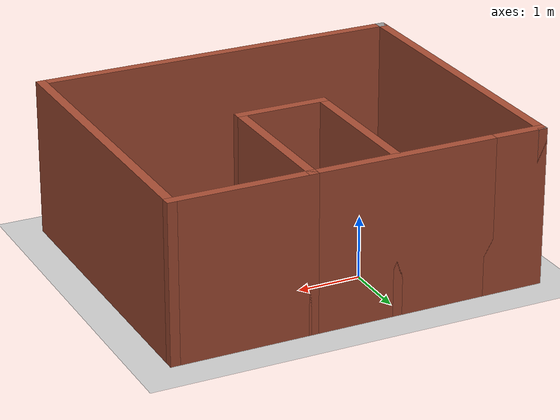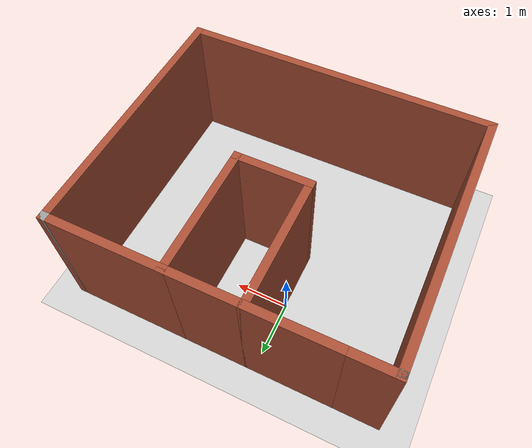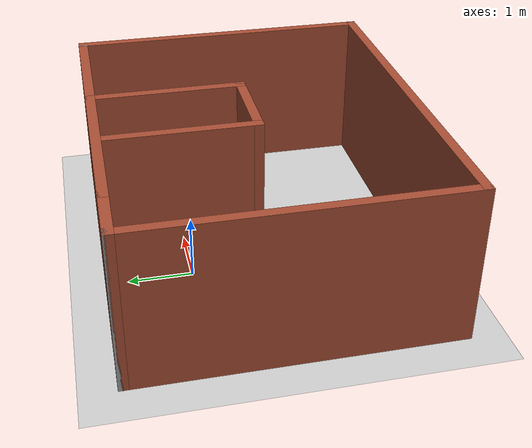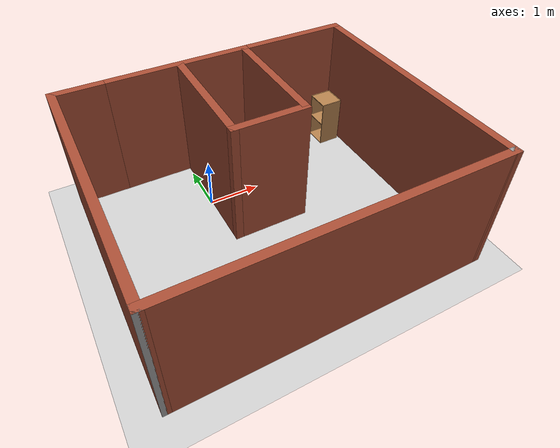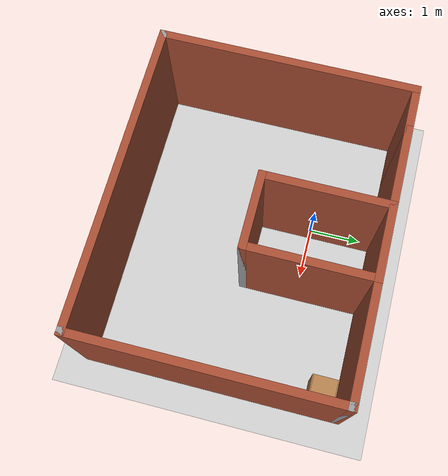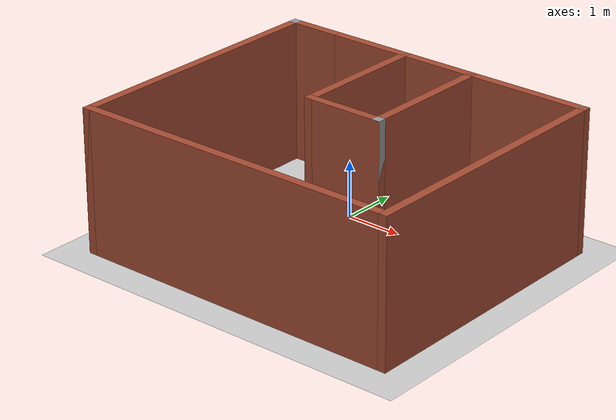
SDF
<sdf version="1.6">
 <world name="default">
  <light name="sun" type="directional">
   <pose>0 0 15 0 -0 0</pose>
   <diffuse>1 1 1 1</diffuse>
   <specular>0.1 0.1 0.1 1</specular>
   <attenuation>
    <range>1000</range>
    <constant>0.9</constant>
    <linear>0.01</linear>
    <quadratic>0.001</quadratic>
   </attenuation>
   <direction>-0.5 0.5 -1</direction>
  </light>
  <model name="ground_plane">
   <static>1</static>
   <link name="link">
    <collision name="collision">
     <geometry><plane><normal>0 0 1</normal><size>100 100</size></plane></geometry>
     <surface><friction><ode><mu>100</mu><mu2>50</mu2></ode></friction></surface>
    </collision>
    <visual name="visual">
     <transparency>1</transparency>
     <cast_shadows>0</cast_shadows>
     <geometry><plane><normal>0 0 1</normal><size>100 100</size></plane></geometry>
     <material>
      <script><uri>file://media/materials/scripts/gazebo.material</uri><name>Gazebo/Grey</name></script>
     </material>
    </visual>
   </link>
  </model>
  <gravity>0 0 -9.8</gravity>
  <magnetic_field>6e-06 2.3e-05 -4.2e-05</magnetic_field>
  <atmosphere type="adiabatic"/>
  <physics name="default_physics" default="0" type="ode">
   <max_step_size>0.001</max_step_size>
   <real_time_factor>1</real_time_factor>
   <real_time_update_rate>1000</real_time_update_rate>
  </physics>
  <scene><ambient>0.4 0.4 0.4 1</ambient><background>0.7 0.7 0.7 1</background><shadows>1</shadows></scene>
  <spherical_coordinates>
   <surface_model>EARTH_WGS84</surface_model>
   <latitude_deg>0</latitude_deg>
   <longitude_deg>0</longitude_deg>
   <elevation>0</elevation>
   <heading_deg>0</heading_deg>
  </spherical_coordinates>
  <model name="model">
   <pose>0.661983 -1.1407 0 0 -0 0</pose>
   <link name="Wall_0">
    <collision name="Wall_0_Collision">
     <geometry><box><size>3 0.15 2.5</size></box></geometry>
     <pose>0 0 1.25 0 -0 0</pose>
    </collision>
    <visual name="Wall_0_Visual">
     <pose>0 0 1.25 0 -0 0</pose>
     <geometry><box><size>3 0.15 2.5</size></box></geometry>
     <material>
      <script><uri>file://media/materials/scripts/gazebo.material</uri><name>Gazebo/Bricks</name></script>
      <ambient>1 1 1 1</ambient>
     </material>
    </visual>
    <pose>-0.65 2.425 0 0 -0 0</pose>
   </link>
   <link name="Wall_10">
    <collision name="Wall_10_Collision">
     <geometry><box><size>2.3 0.15 2.5</size></box></geometry>
     <pose>0 0 1.25 0 -0 0</pose>
    </collision>
    <visual name="Wall_10_Visual">
     <pose>0 0 1.25 0 -0 0</pose>
     <geometry><box><size>2.3 0.15 2.5</size></box></geometry>
     <material>
      <script><uri>file://media/materials/scripts/gazebo.material</uri><name>Gazebo/Bricks</name></script>
      <ambient>1 1 1 1</ambient>
     </material>
    </visual>
    <pose>1.85 2.425 0 0 -0 3.14159</pose>
   </link>
   <link name="Wall_11">
    <collision name="Wall_11_Collision">
     <geometry><box><size>2.5 0.15 2.5</size></box></geometry>
     <pose>0 0 1.25 0 -0 0</pose>
    </collision>
    <visual name="Wall_11_Visual">
     <pose>0 0 1.25 0 -0 0</pose>
     <geometry><box><size>2.5 0.15 2.5</size></box></geometry>
     <material>
      <script><uri>file://media/materials/scripts/gazebo.material</uri><name>Gazebo/Bricks</name></script>
      <ambient>1 1 1 1</ambient>
     </material>
    </visual>
    <pose>0.775 1.25 0 0 0 -1.5708</pose>
   </link>
   <link name="Wall_12">
    <collision name="Wall_12_Collision">
     <geometry><box><size>0.15 0.15 2.5</size></box></geometry>
     <pose>0 0 1.25 0 -0 0</pose>
    </collision>
    <visual name="Wall_12_Visual">
     <pose>0 0 1.25 0 -0 0</pose>
     <geometry><box><size>0.15 0.15 2.5</size></box></geometry>
     <material>
      <script><uri>file://media/materials/scripts/gazebo.material</uri><name>Gazebo/Grey</name></script>
      <ambient>1 1 1 1</ambient>
     </material>
    </visual>
    <pose>0.775 0.075 0 0 -0 0</pose>
   </link>
   <link name="Wall_13">
    <collision name="Wall_13_Collision">
     <geometry><box><size>1.5 0.15 2.5</size></box></geometry>
     <pose>0 0 1.25 0 -0 0</pose>
    </collision>
    <visual name="Wall_13_Visual">
     <pose>0 0 1.25 0 -0 0</pose>
     <geometry><box><size>1.5 0.15 2.5</size></box></geometry>
     <material>
      <script><uri>file://media/materials/scripts/gazebo.material</uri><name>Gazebo/Bricks</name></script>
      <ambient>1 1 1 1</ambient>
     </material>
    </visual>
    <pose>0.1 0.075 0 0 -0 3.14159</pose>
   </link>
   <link name="Wall_14">
    <collision name="Wall_14_Collision">
     <geometry><box><size>2.5 0.15 2.5</size></box></geometry>
     <pose>0 0 1.25 0 -0 0</pose>
    </collision>
    <visual name="Wall_14_Visual">
     <pose>0 0 1.25 0 -0 0</pose>
     <geometry><box><size>2.5 0.15 2.5</size></box></geometry>
     <material>
      <script><uri>file://media/materials/scripts/gazebo.material</uri><name>Gazebo/Bricks</name></script>
      <ambient>1 1 1 1</ambient>
     </material>
    </visual>
    <pose>-0.575 1.25 0 0 -0 1.5708</pose>
   </link>
   <link name="Wall_2">
    <collision name="Wall_2_Collision">
     <geometry><box><size>1 0.15 2.5</size></box></geometry>
     <pose>0 0 1.25 0 -0 0</pose>
    </collision>
    <visual name="Wall_2_Visual">
     <pose>0 0 1.25 0 -0 0</pose>
     <geometry><box><size>1 0.15 2.5</size></box></geometry>
     <material>
      <script><uri>file://media/materials/scripts/gazebo.material</uri><name>Gazebo/Bricks</name></script>
      <ambient>1 1 1 1</ambient>
     </material>
    </visual>
    <pose>-2.5 2.425 0 0 -0 3.14159</pose>
   </link>
   <link name="Wall_3">
    <collision name="Wall_3_Collision">
     <geometry><box><size>0.15 0.15 2.5</size></box></geometry>
     <pose>0 0 1.25 0 -0 0</pose>
    </collision>
    <visual name="Wall_3_Visual">
     <pose>0 0 1.25 0 -0 0</pose>
     <geometry><box><size>0.15 0.15 2.5</size></box></geometry>
     <material>
      <script><uri>file://media/materials/scripts/gazebo.material</uri><name>Gazebo/Grey</name></script>
      <ambient>1 1 1 1</ambient>
     </material>
    </visual>
    <pose>-2.925 2.425 0 0 -0 0</pose>
   </link>
   <link name="Wall_4">
    <collision name="Wall_4_Collision">
     <geometry><box><size>5 0.15 2.5</size></box></geometry>
     <pose>0 0 1.25 0 -0 0</pose>
    </collision>
    <visual name="Wall_4_Visual">
     <pose>0 0 1.25 0 -0 0</pose>
     <geometry><box><size>5 0.15 2.5</size></box></geometry>
     <material>
      <script><uri>file://media/materials/scripts/gazebo.material</uri><name>Gazebo/Bricks</name></script>
      <ambient>1 1 1 1</ambient>
     </material>
    </visual>
    <pose>-2.925 0 0 0 0 -1.5708</pose>
   </link>
   <link name="Wall_5">
    <collision name="Wall_5_Collision">
     <geometry><box><size>0.15 0.15 2.5</size></box></geometry>
     <pose>0 0 1.25 0 -0 0</pose>
    </collision>
    <visual name="Wall_5_Visual">
     <pose>0 0 1.25 0 -0 0</pose>
     <geometry><box><size>0.15 0.15 2.5</size></box></geometry>
     <material>
      <script><uri>file://media/materials/scripts/gazebo.material</uri><name>Gazebo/Grey</name></script>
      <ambient>1 1 1 1</ambient>
     </material>
    </visual>
    <pose>-2.925 -2.425 0 0 -0 0</pose>
   </link>
   <link name="Wall_6">
    <collision name="Wall_6_Collision">
     <geometry><box><size>6 0.15 2.5</size></box></geometry>
     <pose>0 0 1.25 0 -0 0</pose>
    </collision>
    <visual name="Wall_6_Visual">
     <pose>0 0 1.25 0 -0 0</pose>
     <geometry><box><size>6 0.15 2.5</size></box></geometry>
     <material>
      <script><uri>file://media/materials/scripts/gazebo.material</uri><name>Gazebo/Bricks</name></script>
      <ambient>1 1 1 1</ambient>
     </material>
    </visual>
    <pose>0 -2.425 0 0 -0 0</pose>
   </link>
   <link name="Wall_7">
    <collision name="Wall_7_Collision">
     <geometry><box><size>0.15 0.15 2.5</size></box></geometry>
     <pose>0 0 1.25 0 -0 0</pose>
    </collision>
    <visual name="Wall_7_Visual">
     <pose>0 0 1.25 0 -0 0</pose>
     <geometry><box><size>0.15 0.15 2.5</size></box></geometry>
     <material>
      <script><uri>file://media/materials/scripts/gazebo.material</uri><name>Gazebo/Grey</name></script>
      <ambient>1 1 1 1</ambient>
     </material>
    </visual>
    <pose>2.925 -2.425 0 0 -0 0</pose>
   </link>
   <link name="Wall_8">
    <collision name="Wall_8_Collision">
     <geometry><box><size>5 0.15 2.5</size></box></geometry>
     <pose>0 0 1.25 0 -0 0</pose>
    </collision>
    <visual name="Wall_8_Visual">
     <pose>0 0 1.25 0 -0 0</pose>
     <geometry><box><size>5 0.15 2.5</size></box></geometry>
     <material>
      <script><uri>file://media/materials/scripts/gazebo.material</uri><name>Gazebo/Bricks</name></script>
      <ambient>1 1 1 1</ambient>
     </material>
    </visual>
    <pose>2.925 0 0 0 -0 1.5708</pose>
   </link>
   <link name="Wall_9">
    <collision name="Wall_9_Collision">
     <geometry><box><size>0.15 0.15 2.5</size></box></geometry>
     <pose>0 0 1.25 0 -0 0</pose>
    </collision>
    <visual name="Wall_9_Visual">
     <pose>0 0 1.25 0 -0 0</pose>
     <geometry><box><size>0.15 0.15 2.5</size></box></geometry>
     <material>
      <script><uri>file://media/materials/scripts/gazebo.material</uri><name>Gazebo/Grey</name></script>
      <ambient>1 1 1 1</ambient>
     </material>
    </visual>
    <pose>2.925 2.425 0 0 -0 0</pose>
   </link>
   <static>1</static>
  </model>
  <model name="cabinet">
   <static>1</static>
   <link name="cabinet_bottom_plate">
    <inertial>
     <pose>0 0 -1 0 -0 0</pose>
     <inertia><ixx>2.05</ixx><ixy>0</ixy><ixz>0</ixz><iyy>2.05</iyy><iyz>0</iyz><izz>2.05</izz></inertia>
     <mass>25</mass>
    </inertial>
    <collision name="cabinet_bottom_plate_geom">
     <pose>0 0 0.01 0 -0 0</pose>
     <geometry><box><size>0.45 0.45 0.02</size></box></geometry>
    </collision>
    <visual name="cabinet_bottom_plate_geom_visual">
     <pose>0 0 0.01 0 -0 0</pose>
     <geometry><box><size>0.45 0.45 0.02</size></box></geometry>
     <material>
      <script><uri>file://media/materials/scripts/gazebo.material</uri><name>Gazebo/Wood</name></script>
     </material>
    </visual>
    <collision name="cabinet_bottom_plate_geom_cabinet_back_plate">
     <pose>0.235 0 0.51 0 -0 0</pose>
     <geometry><box><size>0.02 0.45 1.02</size></box></geometry>
    </collision>
    <visual name="cabinet_bottom_plate_geom_cabinet_back_plate_visual">
     <pose>0.235 0 0.51 0 -0 0</pose>
     <geometry><box><size>0.02 0.45 1.02</size></box></geometry>
     <material>
      <script><uri>file://media/materials/scripts/gazebo.material</uri><name>Gazebo/Wood</name></script>
     </material>
    </visual>
    <collision name="cabinet_bottom_plate_geom_cabinet_left_plate">
     <pose>0 0.235 0.51 0 -0 0</pose>
     <geometry><box><size>0.45 0.02 1.02</size></box></geometry>
    </collision>
    <visual name="cabinet_bottom_plate_geom_cabinet_left_plate_visual">
     <pose>0 0.235 0.51 0 -0 0</pose>
     <geometry><box><size>0.45 0.02 1.02</size></box></geometry>
     <material>
      <script><uri>file://media/materials/scripts/gazebo.material</uri><name>Gazebo/Wood</name></script>
     </material>
    </visual>
    <collision name="cabinet_bottom_plate_geom_cabinet_middle_plate">
     <pose>0 0 0.51 0 -0 0</pose>
     <geometry><box><size>0.45 0.45 0.02</size></box></geometry>
    </collision>
    <visual name="cabinet_bottom_plate_geom_cabinet_middle_plate_visual">
     <pose>0 0 0.51 0 -0 0</pose>
     <geometry><box><size>0.45 0.45 0.02</size></box></geometry>
     <material>
      <script><uri>file://media/materials/scripts/gazebo.material</uri><name>Gazebo/Wood</name></script>
     </material>
    </visual>
    <collision name="cabinet_bottom_plate_geom_cabinet_right_plate">
     <pose>0 -0.235 0.51 0 -0 0</pose>
     <geometry><box><size>0.45 0.02 1.02</size></box></geometry>
    </collision>
    <visual name="cabinet_bottom_plate_geom_cabinet_right_plate_visual">
     <pose>0 -0.235 0.51 0 -0 0</pose>
     <geometry><box><size>0.45 0.02 1.02</size></box></geometry>
     <material>
      <script><uri>file://media/materials/scripts/gazebo.material</uri><name>Gazebo/Wood</name></script>
     </material>
    </visual>
    <collision name="cabinet_bottom_plate_geom_cabinet_top_plate">
     <pose>0 0 1.01 0 -0 0</pose>
     <geometry><box><size>0.45 0.45 0.02</size></box></geometry>
    </collision>
    <visual name="cabinet_bottom_plate_geom_cabinet_top_plate_visual">
     <pose>0 0 1.01 0 -0 0</pose>
     <geometry><box><size>0.45 0.45 0.02</size></box></geometry>
     <material>
      <script><uri>file://media/materials/scripts/gazebo.material</uri><name>Gazebo/Wood</name></script>
     </material>
    </visual>
   </link>
   <pose>3.23229 0.876039 0 0 -0 0</pose>
  </model>
 </world>
</sdf>
